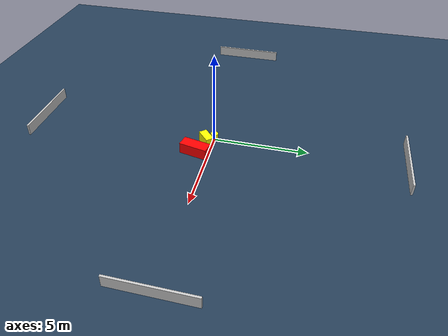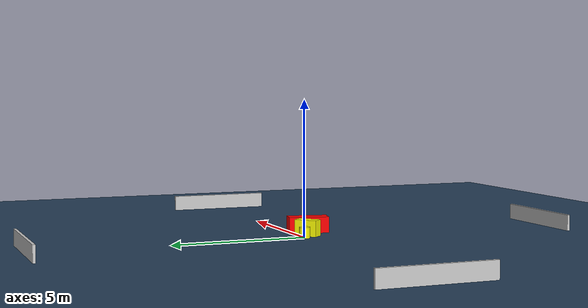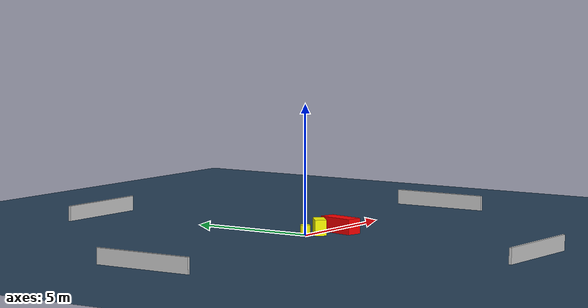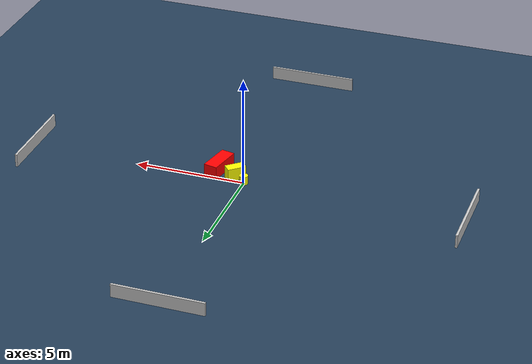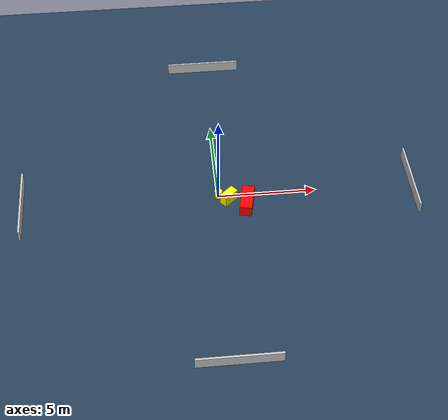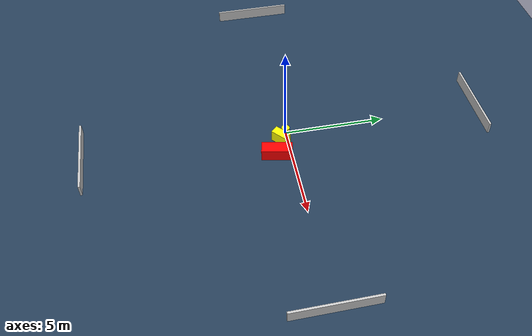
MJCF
<?xml version="1.0" ?>
<mujoco model="generated_environment">
  <option timestep="0.01" integrator="RK4" cone="elliptic"/>
  <default>
    <geom density="1"/>
  </default>
  <asset>
    <texture builtin="gradient" height="3072" name="skybox" rgb1="0.3 0.5 0.7" rgb2="0 0 0" type="skybox" width="512"/>
    <texture builtin="checker" height="300" name="groundplane" rgb1="0.2 0.3 0.4" rgb2="0.1 0.2 0.3" type="2d" width="300"/>
    <material name="groundplane" reflectance="0.2" texrepeat="5 5" texture="groundplane"/>
  </asset>
  <worldbody>
    <light dir="0 0 -1" directional="true" pos="0 0 1.5"/>
    <geom condim="3" friction="0.5 0.005 0.001" material="groundplane" name="floor" pos="0 0 0" size="0 0 0.05" type="plane"/>
    <body name="walls">
      <geom name="wall_1" condim="4" pos="-10.0 0.0 0.3" rgba="0.800000011920929 0.800000011920929 0.800000011920929 1.0" size="0.05 2.0 0.3" type="box"/>
      <geom name="wall_2" condim="4" pos="10.0 0.0 0.3" rgba="0.800000011920929 0.800000011920929 0.800000011920929 1.0" size="0.05 2.0 0.3" type="box"/>
      <geom name="wall_3" condim="4" pos="0.0 -10.0 0.3" rgba="0.800000011920929 0.800000011920929 0.800000011920929 1.0" size="2.0 0.05 0.3" type="box"/>
      <geom name="wall_4" condim="4" pos="0.0 10.0 0.3" rgba="0.800000011920929 0.800000011920929 0.800000011920929 1.0" size="2.0 0.05 0.3" type="box"/>
    </body>
    <body name="robot">
      <joint name="joint_x" type="slide" pos="0 0 0" axis="1 0 0"/>
      <joint name="joint_y" type="slide" pos="0 0 0" axis="0 1 0"/>
      <geom name="robot" type="cylinder" pos="0.0 0.0 0.2" size="0.2 0.2 0.0" mass="5.0" friction="1.0 0.005 0.0001" condim="4" rgba="1.0 1.0 0.0 1.0"/>
    </body>
    <body name="obstacle_1_movable">
      <geom name="obstacle_1_movable" condim="4" pos="0.4920291164923252 -0.32586171299510536 0.3" euler="0 0 41.342932964010586" friction="0.0 0.005 0.001" rgba="1.0 1.0 0.0 1.0" size="0.4296945472023845 0.21929618452398528 0.3" type="box" mass="0.1"/>
      <joint type="free"/>
    </body>
    <body name="obstacle_2_static">
      <geom name="obstacle_2_static" condim="4" pos="1.3815971003373946 -0.7001533533369286 0.3" euler="0 0 257.98370159025944" friction="0.0 0.005 0.001" rgba="1.0 0.0 0.0 1.0" size="0.7481151025017942 0.31261310143308857 0.3" type="box"/>
    </body>
  </worldbody>
  <actuator>
    <motor name="actuator_x" joint="joint_x" gear="1" ctrlrange="-1 1"/>
    <motor name="actuator_y" joint="joint_y" gear="1" ctrlrange="-1 1"/>
  </actuator>
</mujoco>
